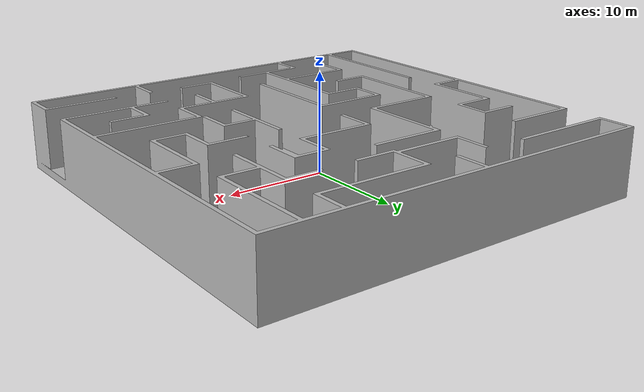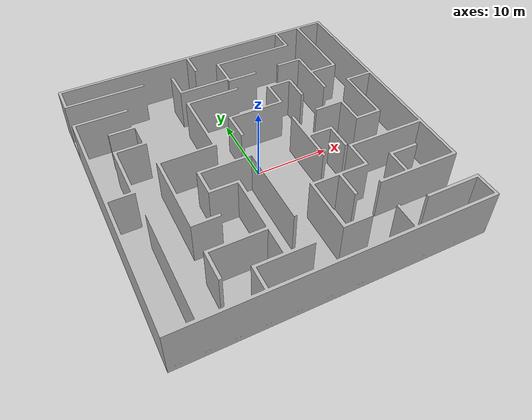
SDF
<?xml version="1.0"?>
<sdf version="1.6">
  <model name="Gazebo_Maze_World">
    <static>true</static>

    <link name="link">

      <visual name="visual">
        <geometry>
          <mesh>
            <uri>file://home/......./models/Gazebo_World_Meter/meshes/Gazebo_Maze_World.stl</uri>
            <scale>2 2 2</scale>
          </mesh>
        </geometry>
      </visual>

      <collision name="collision">
        <geometry>
          <mesh>
            <uri>file://home/......../models/Gazebo_World_Meter/meshes/Gazebo_Maze_World.stl</uri>
            <scale>2 2 2</scale>
          </mesh>
        </geometry>
      </collision>

    </link>
  </model>
</sdf>
